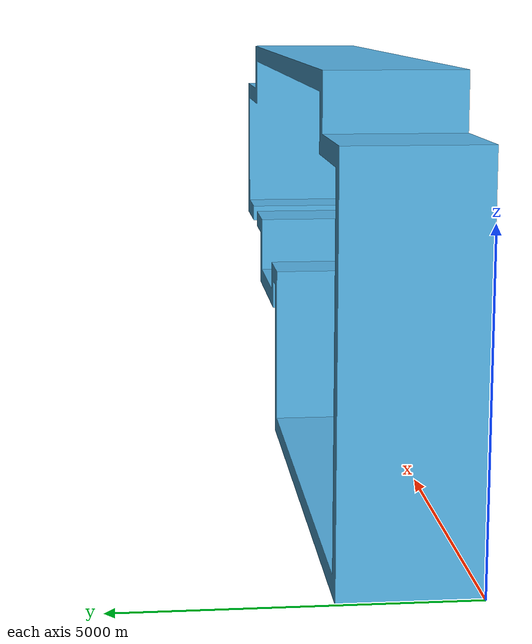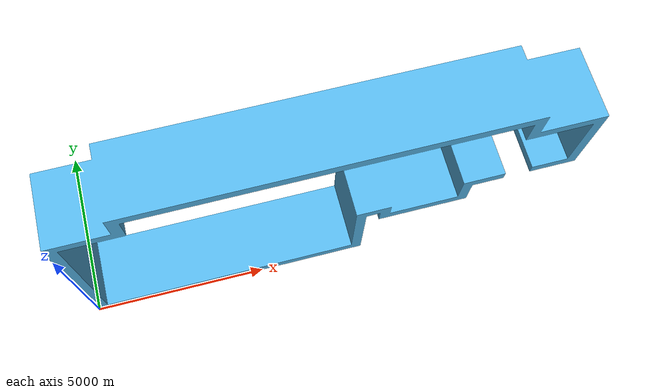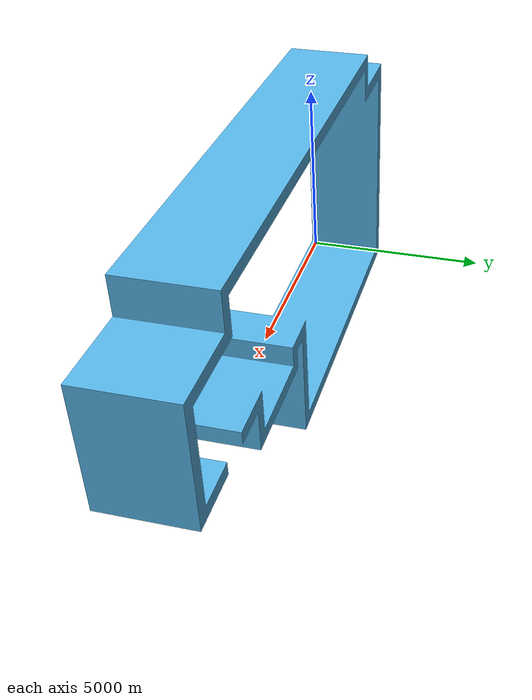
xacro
<?xml version="1.0"?>

<robot name="design_loft_config" xmlns:xacro="http://ros.org/wiki/xacro">

  <link name="origin">
    <inertial>
      <origin xyz="0 0 0" />
      <mass value="0" />
      <inertia  ixx="0" ixy="0"  ixz="0"  iyy="0"  iyz="0"  izz="0" />
    </inertial>
    <visual>
      <origin xyz="0 0 0" />
      <geometry>
        <box size="0 0 0" />
      </geometry>
    </visual>
    <collision>
      <origin xyz="0 0 0"/>
      <geometry>
        <box size="0 0 0"/>
      </geometry>
    </collision>
  </link>

  <link name='walls'>
    <inertial>
      <origin xyz="0 0 0" />
      <mass value="10" />
      <inertia  ixx="1" ixy="0"  ixz="0"  iyy="1"  iyz="0"  izz="1" />
    </inertial>
    <visual>
      <origin xyz="0 0 0" />
      <geometry>
            <mesh filename="package://robbie_gazebo/worlds/designLoft_floorPlan.stl"/>
      </geometry>
    </visual>
    <collision>
      <origin xyz="0 0 0" />
      <geometry>
            <mesh filename="package://robbie_gazebo/worlds/designLoft_floorPlan.stl"/>
      </geometry>
    </collision>
  </link>
  <joint name="world_to_walls" type="fixed">
        <origin xyz="0.25 0 0" rpy="0 0 0"/>
        <parent link="origin"/>
        <child link="walls"/>
  </joint>

</robot>
